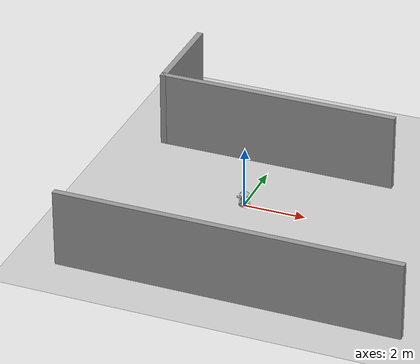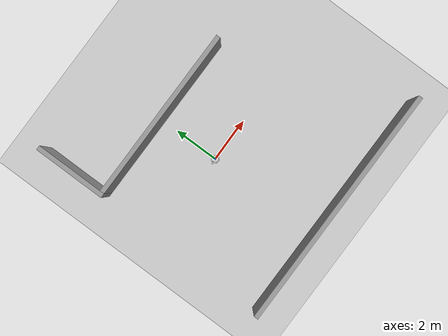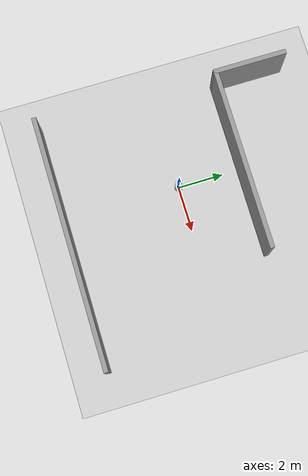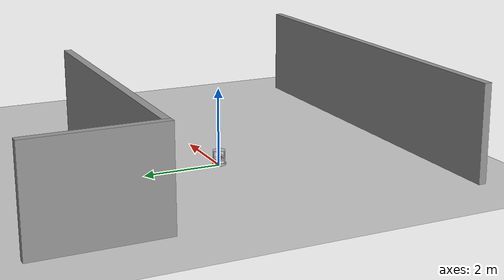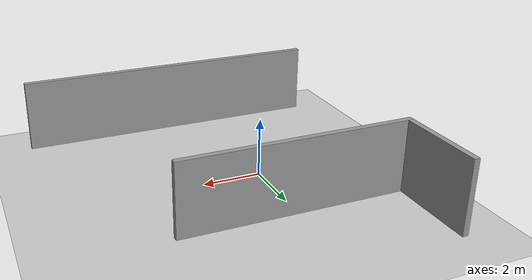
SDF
<sdf version="1.4">
 <world name="default">
  <light name="sun" type="directional">
   <pose>0 0 10 0 -0 0</pose>
   <diffuse>0.8 0.8 0.8 1</diffuse>
   <specular>0.2 0.2 0.2 1</specular>
   <attenuation>
    <range>1000</range>
    <constant>0.9</constant>
    <linear>0.01</linear>
    <quadratic>0.001</quadratic>
   </attenuation>
   <direction>-0.5 0.1 -0.9</direction>
  </light>
  <model name="ground_plane">
   <static>1</static>
   <link name="link">
    <collision name="collision">
     <geometry><plane><normal>0 0 1</normal><size>100 100</size></plane></geometry>
     <surface><friction><ode><mu>100</mu><mu2>50</mu2></ode></friction></surface>
    </collision>
    <visual name="visual">
     <cast_shadows>0</cast_shadows>
     <geometry><plane><normal>0 0 1</normal><size>100 100</size></plane></geometry>
     <material>
      <script><uri>file://media/materials/scripts/gazebo.material</uri><name>Gazebo/Grey</name></script>
     </material>
    </visual>
    <velocity_decay><linear>0</linear><angular>0</angular></velocity_decay>
   </link>
  </model>
  <physics type="ode">
   <max_step_size>0.01</max_step_size>
   <real_time_factor>1</real_time_factor>
   <real_time_update_rate>100</real_time_update_rate>
   <gravity>0 0 -9.8</gravity>
  </physics>
  <scene><ambient>0.4 0.4 0.4 1</ambient><background>0.7 0.7 0.7 1</background><shadows>1</shadows></scene>
  <model name="mobile_base">
   <link name="base_footprint">
    <inertial>
     <pose>0.00947362 2.50779e-05 0.014919 0 -0 0</pose>
     <mass>2.4723</mass>
     <inertia>
      <ixx>0.0578436</ixx>
      <ixy>-2.91646e-06</ixy>
      <ixz>0.000317338</ixz>
      <iyy>0.0579316</iyy>
      <iyz>-9.59821e-07</iyz>
      <izz>0.0719963</izz>
     </inertia>
    </inertial>
    <collision name="base_footprint_collision_base_link">
     <pose>0 0 0.06969 0 -0 0</pose>
     <geometry><cylinder><length>0.10938</length><radius>0.178</radius></cylinder></geometry>
    </collision>
    <collision name="base_footprint_collision_camera_link">
     <pose>-0.118 0 0.2812 0 -0 0</pose>
     <geometry><box><size>0.07271 0.27794 0.073</size></box></geometry>
    </collision>
    <collision name="base_footprint_collision_caster_back_link">
     <pose>-0.135 0 0.0192 -1.5708 0 0</pose>
     <geometry><cylinder><length>0.0176</length><radius>0.017</radius></cylinder></geometry>
     <surface>
      <contact><ode><kp>1e+08</kp><kd>10000</kd></ode></contact>
      <friction><ode><mu>0</mu><mu2>0</mu2></ode></friction>
     </surface>
    </collision>
    <collision name="base_footprint_collision_caster_front_link">
     <pose>0.115 0 0.0172 -1.5708 0 0</pose>
     <geometry><cylinder><length>0.0176</length><radius>0.017</radius></cylinder></geometry>
     <surface>
      <contact><ode><kp>1e+08</kp><kd>10000</kd></ode></contact>
      <friction><ode><mu>0</mu><mu2>0</mu2></ode></friction>
     </surface>
    </collision>
    <collision name="base_footprint_collision_plate_bottom_link">
     <pose>0 0 0.1408 0 -0 0</pose>
     <geometry><cylinder><length>0.006</length><radius>0.17</radius></cylinder></geometry>
    </collision>
    <collision name="base_footprint_collision_plate_middle_link">
     <pose>0 0 0.1976 0 -0 0</pose>
     <geometry><cylinder><length>0.006</length><radius>0.17</radius></cylinder></geometry>
    </collision>
    <collision name="base_footprint_collision_plate_top_link">
     <pose>0 0 0.4068 0 -0 0</pose>
     <geometry><cylinder><length>0.006</length><radius>0.17</radius></cylinder></geometry>
    </collision>
    <collision name="base_footprint_collision_pole_bottom_0_link">
     <pose>0.12 0.082 0.113 0 -0 0</pose>
     <geometry><cylinder><length>0.0492</length><radius>0.006</radius></cylinder></geometry>
    </collision>
    <collision name="base_footprint_collision_pole_bottom_1_link">
     <pose>0.055 0.12 0.113 0 -0 0</pose>
     <geometry><cylinder><length>0.0492</length><radius>0.006</radius></cylinder></geometry>
    </collision>
    <collision name="base_footprint_collision_pole_bottom_2_link">
     <pose>-0.055 0.12 0.113 0 -0 0</pose>
     <geometry><cylinder><length>0.0492</length><radius>0.006</radius></cylinder></geometry>
    </collision>
    <collision name="base_footprint_collision_pole_bottom_3_link">
     <pose>0.12 -0.082 0.113 0 -0 0</pose>
     <geometry><cylinder><length>0.0492</length><radius>0.006</radius></cylinder></geometry>
    </collision>
    <collision name="base_footprint_collision_pole_bottom_4_link">
     <pose>0.055 -0.12 0.113 0 -0 0</pose>
     <geometry><cylinder><length>0.0492</length><radius>0.006</radius></cylinder></geometry>
    </collision>
    <collision name="base_footprint_collision_pole_bottom_5_link">
     <pose>-0.055 -0.12 0.113 0 -0 0</pose>
     <geometry><cylinder><length>0.0492</length><radius>0.006</radius></cylinder></geometry>
    </collision>
    <collision name="base_footprint_collision_pole_kinect_0_link">
     <pose>-0.1024 0.098 0.2474 0 -0 0</pose>
     <geometry><cylinder><length>0.0936</length><radius>0.006</radius></cylinder></geometry>
    </collision>
    <collision name="base_footprint_collision_pole_kinect_1_link">
     <pose>-0.1024 -0.098 0.2474 0 -0 0</pose>
     <geometry><cylinder><length>0.0936</length><radius>0.006</radius></cylinder></geometry>
    </collision>
    <collision name="base_footprint_collision_pole_middle_0_link">
     <pose>0.0381 0.1505 0.1742 0 -0 0</pose>
     <geometry><cylinder><length>0.0608</length><radius>0.006</radius></cylinder></geometry>
    </collision>
    <collision name="base_footprint_collision_pole_middle_1_link">
     <pose>0.0381 -0.1505 0.1742 0 -0 0</pose>
     <geometry><cylinder><length>0.0608</length><radius>0.006</radius></cylinder></geometry>
    </collision>
    <collision name="base_footprint_collision_pole_middle_2_link">
     <pose>-0.0381 0.1505 0.1742 0 -0 0</pose>
     <geometry><cylinder><length>0.0608</length><radius>0.006</radius></cylinder></geometry>
    </collision>
    <collision name="base_footprint_collision_pole_middle_3_link">
     <pose>-0.0381 -0.1505 0.1742 0 -0 0</pose>
     <geometry><cylinder><length>0.0608</length><radius>0.006</radius></cylinder></geometry>
    </collision>
    <collision name="base_footprint_collision_pole_top_0_link">
     <pose>0.0381 0.1505 0.3022 0 -0 0</pose>
     <geometry><cylinder><length>0.2032</length><radius>0.006</radius></cylinder></geometry>
    </collision>
    <collision name="base_footprint_collision_pole_top_1_link">
     <pose>0.0381 -0.1505 0.3022 0 -0 0</pose>
     <geometry><cylinder><length>0.2032</length><radius>0.006</radius></cylinder></geometry>
    </collision>
    <collision name="base_footprint_collision_pole_top_2_link">
     <pose>-0.0381 0.1505 0.3022 0 -0 0</pose>
     <geometry><cylinder><length>0.2032</length><radius>0.006</radius></cylinder></geometry>
    </collision>
    <collision name="base_footprint_collision_pole_top_3_link">
     <pose>-0.0381 -0.1505 0.3022 0 -0 0</pose>
     <geometry><cylinder><length>0.2032</length><radius>0.006</radius></cylinder></geometry>
    </collision>
    <visual name="base_footprint_visual_base_link">
     <pose>0.001 0 0.06219 0 -0 0</pose>
     <geometry>
      <mesh><scale>1 1 1</scale><uri>/opt/ros/hydro/share/kobuki_description/meshes/main_body.dae</uri></mesh>
     </geometry>
    </visual>
    <visual name="base_footprint_visual_camera_link">
     <pose>-0.118 0 0.2812 0 -0 1.5708</pose>
     <geometry>
      <mesh>
       <scale>1 1 1</scale>
       <uri>/opt/ros/hydro/share/turtlebot_description/meshes/sensors/kinect.dae</uri>
      </mesh>
     </geometry>
    </visual>
    <visual name="base_footprint_visual_plate_bottom_link">
     <pose>0.02364 0 0.1408 0 -0 0</pose>
     <geometry>
      <mesh>
       <scale>1 1 1</scale>
       <uri>/opt/ros/hydro/share/turtlebot_description/meshes/stacks/hexagons/plate_bottom.dae</uri>
      </mesh>
     </geometry>
    </visual>
    <visual name="base_footprint_visual_plate_middle_link">
     <pose>-0.01364 0 0.1976 0 -0 0</pose>
     <geometry>
      <mesh>
       <scale>1 1 1</scale>
       <uri>/opt/ros/hydro/share/turtlebot_description/meshes/stacks/hexagons/plate_middle.dae</uri>
      </mesh>
     </geometry>
    </visual>
    <visual name="base_footprint_visual_plate_top_link">
     <pose>-0.01364 0 0.4068 0 -0 0</pose>
     <geometry>
      <mesh>
       <scale>1 1 1</scale>
       <uri>/opt/ros/hydro/share/turtlebot_description/meshes/stacks/hexagons/plate_top.dae</uri>
      </mesh>
     </geometry>
    </visual>
    <visual name="base_footprint_visual_pole_bottom_0_link">
     <pose>0.12 0.082 0.113 0 -0 0</pose>
     <geometry>
      <mesh>
       <scale>1 1 1</scale>
       <uri>/opt/ros/hydro/share/turtlebot_description/meshes/stacks/hexagons/pole_bottom.dae</uri>
      </mesh>
     </geometry>
    </visual>
    <visual name="base_footprint_visual_pole_bottom_1_link">
     <pose>0.055 0.12 0.113 0 -0 0</pose>
     <geometry>
      <mesh>
       <scale>1 1 1</scale>
       <uri>/opt/ros/hydro/share/turtlebot_description/meshes/stacks/hexagons/pole_bottom.dae</uri>
      </mesh>
     </geometry>
    </visual>
    <visual name="base_footprint_visual_pole_bottom_2_link">
     <pose>-0.055 0.12 0.113 0 -0 0</pose>
     <geometry>
      <mesh>
       <scale>1 1 1</scale>
       <uri>/opt/ros/hydro/share/turtlebot_description/meshes/stacks/hexagons/pole_bottom.dae</uri>
      </mesh>
     </geometry>
    </visual>
    <visual name="base_footprint_visual_pole_bottom_3_link">
     <pose>0.12 -0.082 0.113 0 -0 0</pose>
     <geometry>
      <mesh>
       <scale>1 1 1</scale>
       <uri>/opt/ros/hydro/share/turtlebot_description/meshes/stacks/hexagons/pole_bottom.dae</uri>
      </mesh>
     </geometry>
    </visual>
    <visual name="base_footprint_visual_pole_bottom_4_link">
     <pose>0.055 -0.12 0.113 0 -0 0</pose>
     <geometry>
      <mesh>
       <scale>1 1 1</scale>
       <uri>/opt/ros/hydro/share/turtlebot_description/meshes/stacks/hexagons/pole_bottom.dae</uri>
      </mesh>
     </geometry>
    </visual>
    <visual name="base_footprint_visual_pole_bottom_5_link">
     <pose>-0.055 -0.12 0.113 0 -0 0</pose>
     <geometry>
      <mesh>
       <scale>1 1 1</scale>
       <uri>/opt/ros/hydro/share/turtlebot_description/meshes/stacks/hexagons/pole_bottom.dae</uri>
      </mesh>
     </geometry>
    </visual>
    <visual name="base_footprint_visual_pole_kinect_0_link">
     <pose>-0.1024 0.098 0.2474 0 -0 0</pose>
     <geometry>
      <mesh>
       <scale>1 1 1</scale>
       <uri>/opt/ros/hydro/share/turtlebot_description/meshes/stacks/hexagons/pole_kinect.dae</uri>
      </mesh>
     </geometry>
    </visual>
    <visual name="base_footprint_visual_pole_kinect_1_link">
     <pose>-0.1024 -0.098 0.2474 0 -0 0</pose>
     <geometry>
      <mesh>
       <scale>1 1 1</scale>
       <uri>/opt/ros/hydro/share/turtlebot_description/meshes/stacks/hexagons/pole_kinect.dae</uri>
      </mesh>
     </geometry>
    </visual>
    <visual name="base_footprint_visual_pole_middle_0_link">
     <pose>0.0381 0.1505 0.1742 3.14159 -2.06823e-13 3.14159</pose>
     <geometry>
      <mesh>
       <scale>1 1 1</scale>
       <uri>/opt/ros/hydro/share/turtlebot_description/meshes/stacks/hexagons/pole_middle.dae</uri>
      </mesh>
     </geometry>
    </visual>
    <visual name="base_footprint_visual_pole_middle_1_link">
     <pose>0.0381 -0.1505 0.1742 3.14159 -2.06823e-13 3.14159</pose>
     <geometry>
      <mesh>
       <scale>1 1 1</scale>
       <uri>/opt/ros/hydro/share/turtlebot_description/meshes/stacks/hexagons/pole_middle.dae</uri>
      </mesh>
     </geometry>
    </visual>
    <visual name="base_footprint_visual_pole_middle_2_link">
     <pose>-0.0381 0.1505 0.1742 3.14159 -2.06823e-13 3.14159</pose>
     <geometry>
      <mesh>
       <scale>1 1 1</scale>
       <uri>/opt/ros/hydro/share/turtlebot_description/meshes/stacks/hexagons/pole_middle.dae</uri>
      </mesh>
     </geometry>
    </visual>
    <visual name="base_footprint_visual_pole_middle_3_link">
     <pose>-0.0381 -0.1505 0.1742 3.14159 -2.06823e-13 3.14159</pose>
     <geometry>
      <mesh>
       <scale>1 1 1</scale>
       <uri>/opt/ros/hydro/share/turtlebot_description/meshes/stacks/hexagons/pole_middle.dae</uri>
      </mesh>
     </geometry>
    </visual>
    <visual name="base_footprint_visual_pole_top_0_link">
     <pose>0.0381 0.1505 0.3022 0 -0 0</pose>
     <geometry>
      <mesh>
       <scale>1 1 1</scale>
       <uri>/opt/ros/hydro/share/turtlebot_description/meshes/stacks/hexagons/pole_top.dae</uri>
      </mesh>
     </geometry>
    </visual>
    <visual name="base_footprint_visual_pole_top_1_link">
     <pose>0.0381 -0.1505 0.3022 0 -0 0</pose>
     <geometry>
      <mesh>
       <scale>1 1 1</scale>
       <uri>/opt/ros/hydro/share/turtlebot_description/meshes/stacks/hexagons/pole_top.dae</uri>
      </mesh>
     </geometry>
    </visual>
    <visual name="base_footprint_visual_pole_top_2_link">
     <pose>-0.0381 0.1505 0.3022 0 -0 0</pose>
     <geometry>
      <mesh>
       <scale>1 1 1</scale>
       <uri>/opt/ros/hydro/share/turtlebot_description/meshes/stacks/hexagons/pole_top.dae</uri>
      </mesh>
     </geometry>
    </visual>
    <visual name="base_footprint_visual_pole_top_3_link">
     <pose>-0.0381 -0.1505 0.3022 0 -0 0</pose>
     <geometry>
      <mesh>
       <scale>1 1 1</scale>
       <uri>/opt/ros/hydro/share/turtlebot_description/meshes/stacks/hexagons/pole_top.dae</uri>
      </mesh>
     </geometry>
    </visual>
    <velocity_decay><linear>0</linear><angular>0</angular></velocity_decay>
    <sensor name="bumpers" type="contact">
     <always_on>1</always_on>
     <update_rate>50</update_rate>
     <visualize>1</visualize>
     <contact><collision>base_footprint_collision_base_link</collision><topic>__default_topic__</topic></contact>
     <pose>0 0 0.0102 0 -0 0</pose>
    </sensor>
    <velocity_decay><linear>0</linear><angular>0</angular></velocity_decay>
    <sensor name="camera" type="depth">
     <always_on>1</always_on>
     <update_rate>20</update_rate>
     <camera name="__default__">
      <horizontal_fov>1.0472</horizontal_fov>
      <image><format>R8G8B8</format><width>640</width><height>480</height></image>
      <clip><near>0.05</near><far>8</far></clip>
     </camera>
     <plugin name="kinect_camera_controller" filename="libgazebo_ros_openni_kinect.so">
      <cameraName>camera</cameraName>
      <alwaysOn>true</alwaysOn>
      <updateRate>10</updateRate>
      <imageTopicName>rgb/image_raw</imageTopicName>
      <depthImageTopicName>depth/image_raw</depthImageTopicName>
      <pointCloudTopicName>depth/points</pointCloudTopicName>
      <cameraInfoTopicName>rgb/camera_info</cameraInfoTopicName>
      <depthImageCameraInfoTopicName>depth/camera_info</depthImageCameraInfoTopicName>
      <frameName>camera_depth_optical_frame</frameName>
      <baseline>0.1</baseline>
      <distortion_k1>0.0</distortion_k1>
      <distortion_k2>0.0</distortion_k2>
      <distortion_k3>0.0</distortion_k3>
      <distortion_t1>0.0</distortion_t1>
      <distortion_t2>0.0</distortion_t2>
      <pointCloudCutoff>0.4</pointCloudCutoff>
      <robotNamespace>/</robotNamespace>
     </plugin>
     <pose>-0.118 0 0.2812 0 -0 0</pose>
    </sensor>
    <velocity_decay><linear>0</linear><angular>0</angular></velocity_decay>
    <velocity_decay><linear>0</linear><angular>0</angular></velocity_decay>
    <velocity_decay><linear>0</linear><angular>0</angular></velocity_decay>
    <sensor name="cliff_sensor_front" type="ray">
     <always_on>1</always_on>
     <update_rate>50</update_rate>
     <visualize>1</visualize>
     <ray>
      <scan>
       <horizontal>
        <samples>50</samples>
        <resolution>1</resolution>
        <min_angle>-0.0436</min_angle>
        <max_angle>0.0436</max_angle>
       </horizontal>
      </scan>
      <range><min>0.01</min><max>0.15</max><resolution>1</resolution></range>
     </ray>
     <pose>0.156 0 0.0316 3.14159 1.57079 3.14159</pose>
    </sensor>
    <velocity_decay><linear>0</linear><angular>0</angular></velocity_decay>
    <sensor name="cliff_sensor_left" type="ray">
     <always_on>1</always_on>
     <update_rate>50</update_rate>
     <visualize>1</visualize>
     <ray>
      <scan>
       <horizontal>
        <samples>50</samples>
        <resolution>1</resolution>
        <min_angle>-0.0436</min_angle>
        <max_angle>0.0436</max_angle>
       </horizontal>
      </scan>
      <range><min>0.01</min><max>0.15</max><resolution>1</resolution></range>
     </ray>
     <pose>0.08734 0.13601 0.0316 3.14159 1.57079 3.14159</pose>
    </sensor>
    <velocity_decay><linear>0</linear><angular>0</angular></velocity_decay>
    <sensor name="cliff_sensor_right" type="ray">
     <always_on>1</always_on>
     <update_rate>50</update_rate>
     <visualize>1</visualize>
     <ray>
      <scan>
       <horizontal>
        <samples>50</samples>
        <resolution>1</resolution>
        <min_angle>-0.0436</min_angle>
        <max_angle>0.0436</max_angle>
       </horizontal>
      </scan>
      <range><min>0.01</min><max>0.15</max><resolution>1</resolution></range>
     </ray>
     <pose>0.085 -0.13601 0.0316 3.14159 1.57079 3.14159</pose>
    </sensor>
    <velocity_decay><linear>0</linear><angular>0</angular></velocity_decay>
    <sensor name="imu" type="imu">
     <always_on>1</always_on>
     <update_rate>50</update_rate>
     <visualize>0</visualize>
     <imu>
      <noise>
       <type>gaussian</type>
       <rate><mean>0</mean><stddev>1.96e-06</stddev><bias_mean>0</bias_mean><bias_stddev>0</bias_stddev></rate>
       <accel><mean>0</mean><stddev>0.017</stddev><bias_mean>0.1</bias_mean><bias_stddev>0.001</bias_stddev></accel>
      </noise>
     </imu>
     <pose>0.056 0.062 0.0304 0 -0 0</pose>
    </sensor>
   </link>
   <link name="wheel_left_link">
    <pose>0 0.115 0.0352 -1.5708 0 0</pose>
    <inertial>
     <mass>0.01</mass>
     <inertia><ixx>0.001</ixx><ixy>0</ixy><ixz>0</ixz><iyy>0.001</iyy><iyz>0</iyz><izz>0.001</izz></inertia>
    </inertial>
    <collision name="wheel_left_link_collision">
     <geometry><cylinder><length>0.0206</length><radius>0.0352</radius></cylinder></geometry>
     <surface>
      <contact><ode><kp>1e+08</kp><kd>10000</kd></ode></contact>
      <friction><ode><mu>1</mu><mu2>1</mu2></ode></friction>
     </surface>
    </collision>
    <visual name="wheel_left_link_visual">
     <geometry>
      <mesh><scale>1 1 1</scale><uri>/opt/ros/hydro/share/kobuki_description/meshes/wheel.dae</uri></mesh>
     </geometry>
    </visual>
    <velocity_decay><linear>0</linear><angular>0</angular></velocity_decay>
   </link>
   <joint name="wheel_left_joint" type="revolute">
    <child>wheel_left_link</child>
    <parent>base_footprint</parent>
    <axis><xyz>0 1 0</xyz><limit><lower>-1e+16</lower><upper>1e+16</upper></limit></axis>
   </joint>
   <link name="wheel_right_link">
    <pose>0 -0.115 0.0352 -1.5708 0 0</pose>
    <inertial>
     <mass>0.01</mass>
     <inertia><ixx>0.001</ixx><ixy>0</ixy><ixz>0</ixz><iyy>0.001</iyy><iyz>0</iyz><izz>0.001</izz></inertia>
    </inertial>
    <collision name="wheel_right_link_collision">
     <geometry><cylinder><length>0.0206</length><radius>0.035</radius></cylinder></geometry>
     <surface>
      <contact><ode><kp>1e+08</kp><kd>10000</kd></ode></contact>
      <friction><ode><mu>1</mu><mu2>1</mu2></ode></friction>
     </surface>
    </collision>
    <visual name="wheel_right_link_visual">
     <geometry>
      <mesh><scale>1 1 1</scale><uri>/opt/ros/hydro/share/kobuki_description/meshes/wheel.dae</uri></mesh>
     </geometry>
    </visual>
    <velocity_decay><linear>0</linear><angular>0</angular></velocity_decay>
   </link>
   <joint name="wheel_right_joint" type="revolute">
    <child>wheel_right_link</child>
    <parent>base_footprint</parent>
    <axis><xyz>0 1 0</xyz><limit><lower>-1e+16</lower><upper>1e+16</upper></limit></axis>
   </joint>
   <static>0</static>
   <plugin name="kobuki_controller" filename="libgazebo_ros_kobuki.so">
    <publish_tf>1</publish_tf>
    <left_wheel_joint_name>wheel_left_joint</left_wheel_joint_name>
    <right_wheel_joint_name>wheel_right_joint</right_wheel_joint_name>
    <wheel_separation>.230</wheel_separation>
    <wheel_diameter>0.070</wheel_diameter>
    <torque>1.0</torque>
    <velocity_command_timeout>0.6</velocity_command_timeout>
    <cliff_sensor_left_name>cliff_sensor_left</cliff_sensor_left_name>
    <cliff_sensor_center_name>cliff_sensor_front</cliff_sensor_center_name>
    <cliff_sensor_right_name>cliff_sensor_right</cliff_sensor_right_name>
    <cliff_detection_threshold>0.04</cliff_detection_threshold>
    <bumper_name>bumpers</bumper_name>
    <imu_name>imu</imu_name>
    <robotNamespace>/</robotNamespace>
   </plugin>
   <pose>0.000561 0.002222 -0.001113 -0.00073 -0.008001 -0.005228</pose>
  </model>
  <model name="singleWall">
   <link name="Wall_0">
    <collision name="Wall_0_Collision">
     <geometry><box><size>10.9 0.2 2.5</size></box></geometry>
     <pose>0 0 1.25 0 -0 0</pose>
    </collision>
    <visual name="Wall_0_Visual">
     <pose>0 0 1.25 0 -0 0</pose>
     <geometry><box><size>10.9 0.2 2.5</size></box></geometry>
     <material>
      <script><uri>file://media/materials/scripts/gazebo.material</uri><name>Gazebo/Grey</name></script>
     </material>
    </visual>
    <velocity_decay><linear>0</linear><angular>0</angular></velocity_decay>
    <pose>-0.63 -2.68 0 0 -0 0</pose>
   </link>
   <static>1</static>
   <pose>2 -2.42655 0 0 -0 0</pose>
  </model>
  <model name="wall2">
   <link name="Wall_0">
    <collision name="Wall_0_Collision">
     <geometry><box><size>3.19 0.2 2.5</size></box></geometry>
     <pose>0 0 1.25 0 -0 0</pose>
    </collision>
    <visual name="Wall_0_Visual">
     <pose>0 0 1.25 0 -0 0</pose>
     <geometry><box><size>3.19 0.2 2.5</size></box></geometry>
     <material>
      <script><uri>file://media/materials/scripts/gazebo.material</uri><name>Gazebo/Grey</name></script>
     </material>
    </visual>
    <velocity_decay><linear>0</linear><angular>0</angular></velocity_decay>
    <pose>-4.84 -1.765 0 0 0 -1.5708</pose>
   </link>
   <link name="Wall_1">
    <collision name="Wall_1_Collision">
     <geometry><box><size>7.89 0.2 2.5</size></box></geometry>
     <pose>0 0 1.25 0 -0 0</pose>
    </collision>
    <visual name="Wall_1_Visual">
     <pose>0 0 1.25 0 -0 0</pose>
     <geometry><box><size>7.89 0.2 2.5</size></box></geometry>
     <material>
      <script><uri>file://media/materials/scripts/gazebo.material</uri><name>Gazebo/Grey</name></script>
     </material>
    </visual>
    <velocity_decay><linear>0</linear><angular>0</angular></velocity_decay>
    <pose>-0.995 -3.26 0 0 -0 0</pose>
   </link>
   <static>1</static>
   <pose>1 6 0 0 -0 0</pose>
  </model>
 </world>
</sdf>
